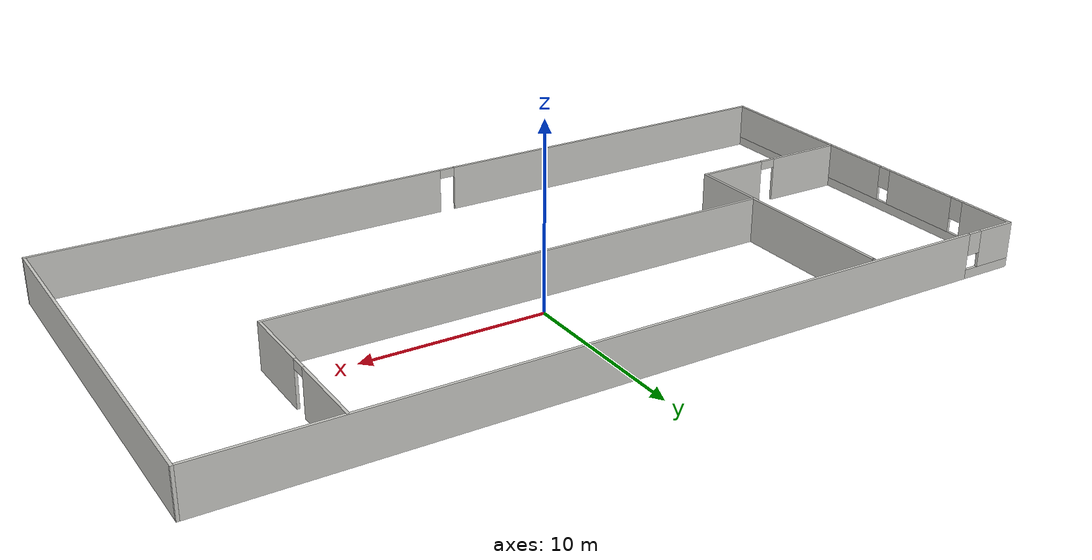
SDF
<?xml version='1.0'?>
<sdf version='1.6'>
  <model name='Surround'>
    <pose frame=''>-1.11624 -3.16191 0 0 -0 0</pose>
    <link name='Wall_1'>
      <pose frame=''>0 -10.925 0 0 -0 0</pose>
      <visual name='Wall_1_Visual_0'>
        <pose frame=''>-11.9671 0 1.25 0 -0 0</pose>
        <geometry>
          <box>
            <size>20.8157 0.15 2.5</size>
          </box>
        </geometry>
        <material>
          <script>
            <uri>file://media/materials/scripts/gazebo.material</uri>
            <name>Gazebo/CeilingTiled</name>
          </script>
          <ambient>1 1 1 1</ambient>
        </material>
      </visual>
      <collision name='Wall_1_Collision_0'>
        <geometry>
          <box>
            <size>20.8157 0.15 2.5</size>
          </box>
        </geometry>
        <pose frame=''>-11.9671 0 1.25 0 -0 0</pose>
      </collision>
      <visual name='Wall_1_Visual_1'>
        <pose frame=''>10.8579 0 1.25 0 -0 0</pose>
        <geometry>
          <box>
            <size>23.0343 0.15 2.5</size>
          </box>
        </geometry>
        <material>
          <script>
            <uri>file://media/materials/scripts/gazebo.material</uri>
            <name>Gazebo/CeilingTiled</name>
          </script>
          <ambient>1 1 1 1</ambient>
        </material>
      </visual>
      <collision name='Wall_1_Collision_1'>
        <geometry>
          <box>
            <size>23.0343 0.15 2.5</size>
          </box>
        </geometry>
        <pose frame=''>10.8579 0 1.25 0 -0 0</pose>
      </collision>
      <visual name='Wall_1_Visual_2'>
        <pose frame=''>-1.10928 0 2.25 0 -0 0</pose>
        <geometry>
          <box>
            <size>0.9 0.15 0.5</size>
          </box>
        </geometry>
        <material>
          <script>
            <uri>file://media/materials/scripts/gazebo.material</uri>
            <name>Gazebo/CeilingTiled</name>
          </script>
          <ambient>1 1 1 1</ambient>
        </material>
      </visual>
      <collision name='Wall_1_Collision_2'>
        <geometry>
          <box>
            <size>0.9 0.15 0.5</size>
          </box>
        </geometry>
        <pose frame=''>-1.10928 0 2.25 0 -0 0</pose>
      </collision>
    </link>
    <link name='Wall_12'>
      <collision name='Wall_12_Collision'>
        <geometry>
          <box>
            <size>28.25 0.15 2.5</size>
          </box>
        </geometry>
        <pose frame=''>0 0 1.25 0 -0 0</pose>
      </collision>
      <visual name='Wall_12_Visual'>
        <pose frame=''>0 0 1.25 0 -0 0</pose>
        <geometry>
          <box>
            <size>28.25 0.15 2.5</size>
          </box>
        </geometry>
        <material>
          <script>
            <uri>file://media/materials/scripts/gazebo.material</uri>
            <name>Gazebo/CeilingTiled</name>
          </script>
          <ambient>1 1 1 1</ambient>
        </material>
      </visual>
      <pose frame=''>0.995703 1.50774 0 0 -0 0</pose>
    </link>
    <link name='Wall_13'>
      <pose frame=''>15.0457 6.18274 0 0 -0 1.5708</pose>
      <visual name='Wall_13_Visual_0'>
        <pose frame=''>-2.69981 0 1.25 0 -0 0</pose>
        <geometry>
          <box>
            <size>4.10038 0.15 2.5</size>
          </box>
        </geometry>
        <material>
          <script>
            <uri>file://media/materials/scripts/gazebo.material</uri>
            <name>Gazebo/CeilingTiled</name>
          </script>
          <ambient>1 1 1 1</ambient>
        </material>
      </visual>
      <collision name='Wall_13_Collision_0'>
        <geometry>
          <box>
            <size>4.10038 0.15 2.5</size>
          </box>
        </geometry>
        <pose frame=''>-2.69981 0 1.25 0 -0 0</pose>
      </collision>
      <visual name='Wall_13_Visual_1'>
        <pose frame=''>2.50019 0 1.25 0 -0 0</pose>
        <geometry>
          <box>
            <size>4.49962 0.15 2.5</size>
          </box>
        </geometry>
        <material>
          <script>
            <uri>file://media/materials/scripts/gazebo.material</uri>
            <name>Gazebo/CeilingTiled</name>
          </script>
          <ambient>1 1 1 1</ambient>
        </material>
      </visual>
      <collision name='Wall_13_Collision_1'>
        <geometry>
          <box>
            <size>4.49962 0.15 2.5</size>
          </box>
        </geometry>
        <pose frame=''>2.50019 0 1.25 0 -0 0</pose>
      </collision>
      <visual name='Wall_13_Visual_2'>
        <pose frame=''>-0.199616 0 2.25 0 -0 0</pose>
        <geometry>
          <box>
            <size>0.9 0.15 0.5</size>
          </box>
        </geometry>
        <material>
          <script>
            <uri>file://media/materials/scripts/gazebo.material</uri>
            <name>Gazebo/CeilingTiled</name>
          </script>
          <ambient>1 1 1 1</ambient>
        </material>
      </visual>
      <collision name='Wall_13_Collision_2'>
        <geometry>
          <box>
            <size>0.9 0.15 0.5</size>
          </box>
        </geometry>
        <pose frame=''>-0.199616 0 2.25 0 -0 0</pose>
      </collision>
    </link>
    <link name='Wall_2'>
      <collision name='Wall_2_Collision'>
        <geometry>
          <box>
            <size>22 0.15 2.5</size>
          </box>
        </geometry>
        <pose frame=''>0 0 1.25 0 -0 0</pose>
      </collision>
      <visual name='Wall_2_Visual'>
        <pose frame=''>0 0 1.25 0 -0 0</pose>
        <geometry>
          <box>
            <size>22 0.15 2.5</size>
          </box>
        </geometry>
        <material>
          <script>
            <uri>file://media/materials/scripts/gazebo.material</uri>
            <name>Gazebo/CeilingTiled</name>
          </script>
          <ambient>1 1 1 1</ambient>
        </material>
      </visual>
      <pose frame=''>22.3 0 0 0 -0 1.5708</pose>
    </link>
    <link name='Wall_3'>
      <pose frame=''>0 10.925 0 0 -0 3.14159</pose>
      <visual name='Wall_3_Visual_0'>
        <pose frame=''>-1.49293 0 1.25 0 -0 0</pose>
        <geometry>
          <box>
            <size>41.7641 0.15 2.5</size>
          </box>
        </geometry>
        <material>
          <script>
            <uri>file://media/materials/scripts/gazebo.material</uri>
            <name>Gazebo/CeilingTiled</name>
          </script>
          <ambient>1 1 1 1</ambient>
        </material>
      </visual>
      <collision name='Wall_3_Collision_0'>
        <geometry>
          <box>
            <size>41.7641 0.15 2.5</size>
          </box>
        </geometry>
        <pose frame=''>-1.49293 0 1.25 0 -0 0</pose>
      </collision>
      <visual name='Wall_3_Visual_1'>
        <pose frame=''>20.8821 0 0.25 0 -0 0</pose>
        <geometry>
          <box>
            <size>2.98586 0.15 0.5</size>
          </box>
        </geometry>
        <material>
          <script>
            <uri>file://media/materials/scripts/gazebo.material</uri>
            <name>Gazebo/CeilingTiled</name>
          </script>
          <ambient>1 1 1 1</ambient>
        </material>
      </visual>
      <collision name='Wall_3_Collision_1'>
        <geometry>
          <box>
            <size>2.98586 0.15 0.5</size>
          </box>
        </geometry>
        <pose frame=''>20.8821 0 0.25 0 -0 0</pose>
      </collision>
      <visual name='Wall_3_Visual_2'>
        <pose frame=''>21.2821 0 1.5 0 -0 0</pose>
        <geometry>
          <box>
            <size>2.18586 0.15 2</size>
          </box>
        </geometry>
        <material>
          <script>
            <uri>file://media/materials/scripts/gazebo.material</uri>
            <name>Gazebo/CeilingTiled</name>
          </script>
          <ambient>1 1 1 1</ambient>
        </material>
      </visual>
      <collision name='Wall_3_Collision_2'>
        <geometry>
          <box>
            <size>2.18586 0.15 2</size>
          </box>
        </geometry>
        <pose frame=''>21.2821 0 1.5 0 -0 0</pose>
      </collision>
      <visual name='Wall_3_Visual_3'>
        <pose frame=''>19.7891 0 1.9 0 -0 0</pose>
        <geometry>
          <box>
            <size>0.8 0.15 1.2</size>
          </box>
        </geometry>
        <material>
          <script>
            <uri>file://media/materials/scripts/gazebo.material</uri>
            <name>Gazebo/CeilingTiled</name>
          </script>
          <ambient>1 1 1 1</ambient>
        </material>
      </visual>
      <collision name='Wall_3_Collision_3'>
        <geometry>
          <box>
            <size>0.8 0.15 1.2</size>
          </box>
        </geometry>
        <pose frame=''>19.7891 0 1.9 0 -0 0</pose>
      </collision>
    </link>
    <link name='Wall_4'>
      <pose frame=''>-22.3 0 0 0 0 -1.5708</pose>
      <visual name='Wall_4_Visual_0'>
        <pose frame=''>-9.3662 0 1.25 0 -0 0</pose>
        <geometry>
          <box>
            <size>3.2676 0.15 2.5</size>
          </box>
        </geometry>
        <material>
          <script>
            <uri>file://media/materials/scripts/gazebo.material</uri>
            <name>Gazebo/CeilingTiled</name>
          </script>
          <ambient>1 1 1 1</ambient>
        </material>
      </visual>
      <collision name='Wall_4_Collision_0'>
        <geometry>
          <box>
            <size>3.2676 0.15 2.5</size>
          </box>
        </geometry>
        <pose frame=''>-9.3662 0 1.25 0 -0 0</pose>
      </collision>
      <visual name='Wall_4_Visual_1'>
        <pose frame=''>1.6338 0 0.25 0 -0 0</pose>
        <geometry>
          <box>
            <size>18.7324 0.15 0.5</size>
          </box>
        </geometry>
        <material>
          <script>
            <uri>file://media/materials/scripts/gazebo.material</uri>
            <name>Gazebo/CeilingTiled</name>
          </script>
          <ambient>1 1 1 1</ambient>
        </material>
      </visual>
      <collision name='Wall_4_Collision_1'>
        <geometry>
          <box>
            <size>18.7324 0.15 0.5</size>
          </box>
        </geometry>
        <pose frame=''>1.6338 0 0.25 0 -0 0</pose>
      </collision>
      <visual name='Wall_4_Visual_2'>
        <pose frame=''>-4.60825 0 1.5 0 -0 0</pose>
        <geometry>
          <box>
            <size>4.64829 0.15 2</size>
          </box>
        </geometry>
        <material>
          <script>
            <uri>file://media/materials/scripts/gazebo.material</uri>
            <name>Gazebo/CeilingTiled</name>
          </script>
          <ambient>1 1 1 1</ambient>
        </material>
      </visual>
      <collision name='Wall_4_Collision_2'>
        <geometry>
          <box>
            <size>4.64829 0.15 2</size>
          </box>
        </geometry>
        <pose frame=''>-4.60825 0 1.5 0 -0 0</pose>
      </collision>
      <visual name='Wall_4_Visual_3'>
        <pose frame=''>4.75795 0 1.5 0 -0 0</pose>
        <geometry>
          <box>
            <size>12.4841 0.15 2</size>
          </box>
        </geometry>
        <material>
          <script>
            <uri>file://media/materials/scripts/gazebo.material</uri>
            <name>Gazebo/CeilingTiled</name>
          </script>
          <ambient>1 1 1 1</ambient>
        </material>
      </visual>
      <collision name='Wall_4_Collision_3'>
        <geometry>
          <box>
            <size>12.4841 0.15 2</size>
          </box>
        </geometry>
        <pose frame=''>4.75795 0 1.5 0 -0 0</pose>
      </collision>
      <visual name='Wall_4_Visual_4'>
        <pose frame=''>-7.3324 0 1.9 0 -0 0</pose>
        <geometry>
          <box>
            <size>0.8 0.15 1.2</size>
          </box>
        </geometry>
        <material>
          <script>
            <uri>file://media/materials/scripts/gazebo.material</uri>
            <name>Gazebo/CeilingTiled</name>
          </script>
          <ambient>1 1 1 1</ambient>
        </material>
      </visual>
      <collision name='Wall_4_Collision_4'>
        <geometry>
          <box>
            <size>0.8 0.15 1.2</size>
          </box>
        </geometry>
        <pose frame=''>-7.3324 0 1.9 0 -0 0</pose>
      </collision>
      <visual name='Wall_4_Visual_5'>
        <pose frame=''>-1.8841 0 1.9 0 -0 0</pose>
        <geometry>
          <box>
            <size>0.8 0.15 1.2</size>
          </box>
        </geometry>
        <material>
          <script>
            <uri>file://media/materials/scripts/gazebo.material</uri>
            <name>Gazebo/CeilingTiled</name>
          </script>
          <ambient>1 1 1 1</ambient>
        </material>
      </visual>
      <collision name='Wall_4_Collision_5'>
        <geometry>
          <box>
            <size>0.8 0.15 1.2</size>
          </box>
        </geometry>
        <pose frame=''>-1.8841 0 1.9 0 -0 0</pose>
      </collision>
    </link>
    <link name='Wall_6'>
      <pose frame=''>-17.6449 -2.64435 0 0 -0 0</pose>
      <visual name='Wall_6_Visual_0'>
        <pose frame=''>-2.43922 0 1.25 0 -0 0</pose>
        <geometry>
          <box>
            <size>4.37157 0.15 2.5</size>
          </box>
        </geometry>
        <material>
          <script>
            <uri>file://media/materials/scripts/gazebo.material</uri>
            <name>Gazebo/CeilingTiled</name>
          </script>
          <ambient>1 1 1 1</ambient>
        </material>
      </visual>
      <collision name='Wall_6_Collision_0'>
        <geometry>
          <box>
            <size>4.37157 0.15 2.5</size>
          </box>
        </geometry>
        <pose frame=''>-2.43922 0 1.25 0 -0 0</pose>
      </collision>
      <visual name='Wall_6_Visual_1'>
        <pose frame=''>2.63578 0 1.25 0 -0 0</pose>
        <geometry>
          <box>
            <size>3.97843 0.15 2.5</size>
          </box>
        </geometry>
        <material>
          <script>
            <uri>file://media/materials/scripts/gazebo.material</uri>
            <name>Gazebo/CeilingTiled</name>
          </script>
          <ambient>1 1 1 1</ambient>
        </material>
      </visual>
      <collision name='Wall_6_Collision_1'>
        <geometry>
          <box>
            <size>3.97843 0.15 2.5</size>
          </box>
        </geometry>
        <pose frame=''>2.63578 0 1.25 0 -0 0</pose>
      </collision>
      <visual name='Wall_6_Visual_2'>
        <pose frame=''>0.196568 0 2.25 0 -0 0</pose>
        <geometry>
          <box>
            <size>0.9 0.15 0.5</size>
          </box>
        </geometry>
        <material>
          <script>
            <uri>file://media/materials/scripts/gazebo.material</uri>
            <name>Gazebo/CeilingTiled</name>
          </script>
          <ambient>1 1 1 1</ambient>
        </material>
      </visual>
      <collision name='Wall_6_Collision_2'>
        <geometry>
          <box>
            <size>0.9 0.15 0.5</size>
          </box>
        </geometry>
        <pose frame=''>0.196568 0 2.25 0 -0 0</pose>
      </collision>
    </link>
    <link name='Wall_7'>
      <collision name='Wall_7_Collision'>
        <geometry>
          <box>
            <size>13.5 0.15 2.5</size>
          </box>
        </geometry>
        <pose frame=''>0 0 1.25 0 -0 0</pose>
      </collision>
      <visual name='Wall_7_Visual'>
        <pose frame=''>0 0 1.25 0 -0 0</pose>
        <geometry>
          <box>
            <size>13.5 0.15 2.5</size>
          </box>
        </geometry>
        <material>
          <script>
            <uri>file://media/materials/scripts/gazebo.material</uri>
            <name>Gazebo/CeilingTiled</name>
          </script>
          <ambient>1 1 1 1</ambient>
        </material>
      </visual>
      <pose frame=''>-13.0949 4.03065 0 0 -0 1.5708</pose>
    </link>
    <link name='Wall_9'>
      <collision name='Wall_9_Collision'>
        <geometry>
          <box>
            <size>0.25 0.15 2.5</size>
          </box>
        </geometry>
        <pose frame=''>0 0 1.25 0 -0 0</pose>
      </collision>
      <visual name='Wall_9_Visual'>
        <pose frame=''>0 0 1.25 0 -0 0</pose>
        <geometry>
          <box>
            <size>0.25 0.15 2.5</size>
          </box>
        </geometry>
        <material>
          <script>
            <uri>file://media/materials/scripts/gazebo.material</uri>
            <name>Gazebo/Grey</name>
          </script>
          <ambient>1 1 1 1</ambient>
        </material>
      </visual>
      <pose frame=''>-13.0819 10.7539 0 0 -0 1.309</pose>
    </link>
    <static>1</static>
  </model>
</sdf>
